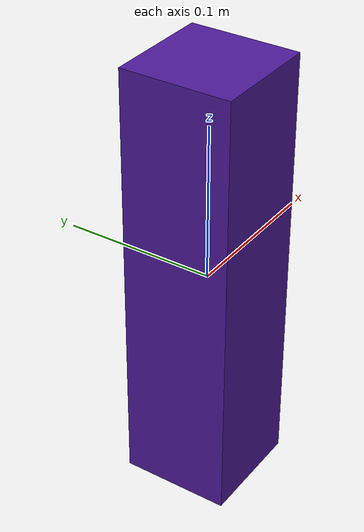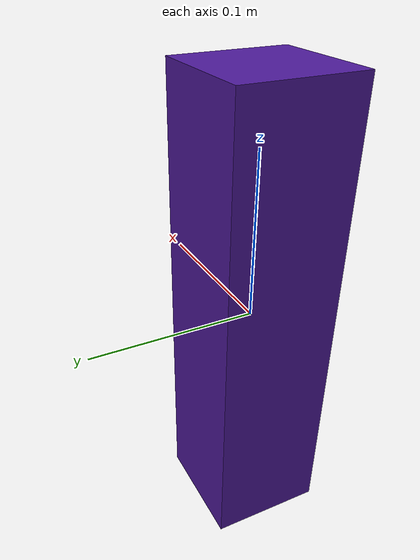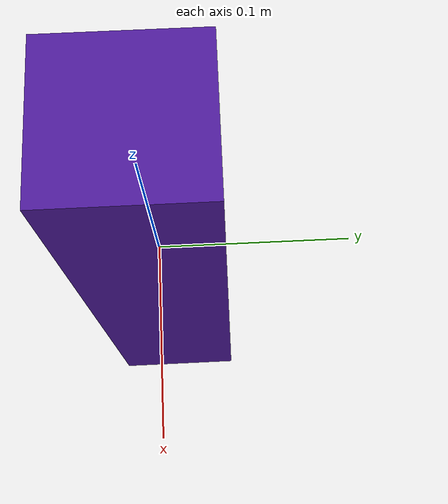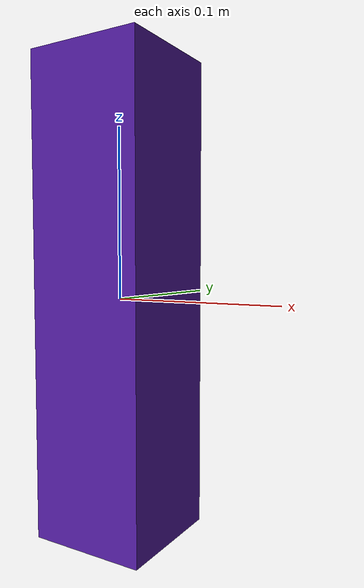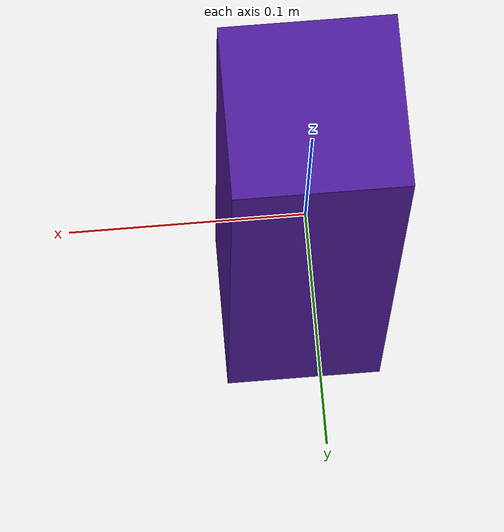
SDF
<?xml version="1.0" ?>
<sdf version="1.6">
  <model name="regolo4">
    <static>false</static>
    <link name="link">
      <collision name="collision">
        <geometry>
          <mesh>
            <uri>model://regolo4/meshes/regolo4.stl</uri>
            <scale>0.07 0.07 0.07</scale>
          </mesh>
        </geometry>
      </collision>
      <visual name="visual">
        <geometry>
          <mesh>
            <uri>model://regolo4/meshes/regolo4.stl</uri>
            <scale>0.07 0.07 0.07</scale>
          </mesh>
        </geometry>
        <material>
          <script>
            <uri>file://media/materials/scripts/gazebo.material</uri>
            <name>Gazebo/Indigo</name> <!-- Change this to the desired color -->
          </script>
        </material>
      </visual>
      <inertial>
        <mass>5.0</mass>
        <inertia>
          <ixx>1</ixx>
          <ixy>0.0</ixy>
          <ixz>0.0</ixz>
          <iyy>1</iyy>
          <iyz>0.0</iyz>
          <izz>1</izz>
        </inertia>
      </inertial>
    </link>
  </model>
</sdf>
